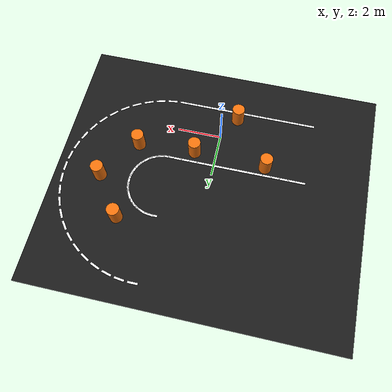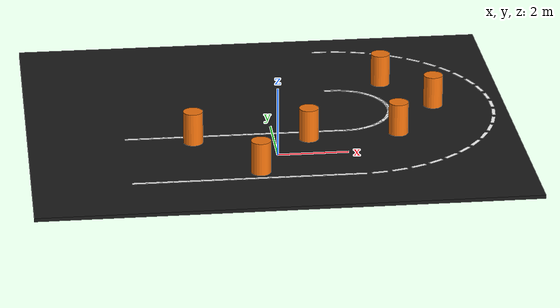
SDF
<sdf version="1.9">
 <world name="test_world_candy_cane_small">
  <physics name="1ms" type="ignored">
   <max_step_size>0.001</max_step_size>
   <real_time_factor>1.0</real_time_factor>
  </physics>
  <plugin filename="libgz-sim8-physics-system.so" name="gz::sim::systems::Physics"/>
  <plugin filename="gz-sim-sensors-system" name="gz::sim::systems::Sensors"/>
  <plugin filename="libgz-sim8-scene-broadcaster-system.so" name="gz::sim::systems::SceneBroadcaster"/>
  <include><uri>https://fuel.gazebosim.org/1.0/openrobotics/models/Sun</uri></include>
  <model name="candy_cane_track_small">
   <static>true</static>
   <link name="track_link">
    <collision name="track_collision">
     <pose>0 2.5 -0.05 0 0 0</pose>
     <geometry><box><size>14 12 0.10</size></box></geometry>
     <surface><friction><ode><mu>1.2</mu><mu2>1.2</mu2></ode></friction></surface>
    </collision>
    <visual name="track_visual">
     <pose>0 2.5 -0.05 0 0 0</pose>
     <geometry><box><size>14 12 0.10</size></box></geometry>
     <material>
      <ambient>0.08 0.08 0.08 1</ambient>
      <diffuse>0.10 0.10 0.10 1</diffuse>
      <specular>0.02 0.02 0.02 1</specular>
     </material>
    </visual>
    <visual name="outer_lane_000">
     <pose>-4.0000 1.5240 0.0010 0 0 0.000000</pose>
     <geometry><box><size>0.4500 0.1000 0.0050</size></box></geometry>
     <material><ambient>1 1 1 1</ambient><diffuse>1 1 1 1</diffuse><specular>0.1 0.1 0.1 1</specular></material>
    </visual>
    <visual name="outer_lane_001">
     <pose>-3.6190 1.5240 0.0010 0 0 0.000000</pose>
     <geometry><box><size>0.4500 0.1000 0.0050</size></box></geometry>
     <material><ambient>1 1 1 1</ambient><diffuse>1 1 1 1</diffuse><specular>0.1 0.1 0.1 1</specular></material>
    </visual>
    <visual name="outer_lane_002">
     <pose>-3.2380 1.5240 0.0010 0 0 0.000000</pose>
     <geometry><box><size>0.4500 0.1000 0.0050</size></box></geometry>
     <material><ambient>1 1 1 1</ambient><diffuse>1 1 1 1</diffuse><specular>0.1 0.1 0.1 1</specular></material>
    </visual>
    <visual name="outer_lane_003">
     <pose>-2.8570 1.5240 0.0010 0 0 0.000000</pose>
     <geometry><box><size>0.4500 0.1000 0.0050</size></box></geometry>
     <material><ambient>1 1 1 1</ambient><diffuse>1 1 1 1</diffuse><specular>0.1 0.1 0.1 1</specular></material>
    </visual>
    <visual name="outer_lane_004">
     <pose>-2.4760 1.5240 0.0010 0 0 0.000000</pose>
     <geometry><box><size>0.4500 0.1000 0.0050</size></box></geometry>
     <material><ambient>1 1 1 1</ambient><diffuse>1 1 1 1</diffuse><specular>0.1 0.1 0.1 1</specular></material>
    </visual>
    <visual name="outer_lane_005">
     <pose>-2.0950 1.5240 0.0010 0 0 0.000000</pose>
     <geometry><box><size>0.4500 0.1000 0.0050</size></box></geometry>
     <material><ambient>1 1 1 1</ambient><diffuse>1 1 1 1</diffuse><specular>0.1 0.1 0.1 1</specular></material>
    </visual>
    <visual name="outer_lane_006">
     <pose>-1.7140 1.5240 0.0010 0 0 0.000000</pose>
     <geometry><box><size>0.4500 0.1000 0.0050</size></box></geometry>
     <material><ambient>1 1 1 1</ambient><diffuse>1 1 1 1</diffuse><specular>0.1 0.1 0.1 1</specular></material>
    </visual>
    <visual name="outer_lane_007">
     <pose>-1.3330 1.5240 0.0010 0 0 0.000000</pose>
     <geometry><box><size>0.4500 0.1000 0.0050</size></box></geometry>
     <material><ambient>1 1 1 1</ambient><diffuse>1 1 1 1</diffuse><specular>0.1 0.1 0.1 1</specular></material>
    </visual>
    <visual name="outer_lane_008">
     <pose>-0.9520 1.5240 0.0010 0 0 0.000000</pose>
     <geometry><box><size>0.4500 0.1000 0.0050</size></box></geometry>
     <material><ambient>1 1 1 1</ambient><diffuse>1 1 1 1</diffuse><specular>0.1 0.1 0.1 1</specular></material>
    </visual>
    <visual name="outer_lane_009">
     <pose>-0.5710 1.5240 0.0010 0 0 0.000000</pose>
     <geometry><box><size>0.4500 0.1000 0.0050</size></box></geometry>
     <material><ambient>1 1 1 1</ambient><diffuse>1 1 1 1</diffuse><specular>0.1 0.1 0.1 1</specular></material>
    </visual>
    <visual name="outer_lane_010">
     <pose>-0.1900 1.5240 0.0010 0 0 0.000000</pose>
     <geometry><box><size>0.4500 0.1000 0.0050</size></box></geometry>
     <material><ambient>1 1 1 1</ambient><diffuse>1 1 1 1</diffuse><specular>0.1 0.1 0.1 1</specular></material>
    </visual>
    <visual name="outer_lane_011">
     <pose>0.1910 1.5240 0.0010 0 0 0.000000</pose>
     <geometry><box><size>0.4500 0.1000 0.0050</size></box></geometry>
     <material><ambient>1 1 1 1</ambient><diffuse>1 1 1 1</diffuse><specular>0.1 0.1 0.1 1</specular></material>
    </visual>
    <visual name="outer_lane_012">
     <pose>0.5720 1.5240 0.0010 0 0 0.000000</pose>
     <geometry><box><size>0.4500 0.1000 0.0050</size></box></geometry>
     <material><ambient>1 1 1 1</ambient><diffuse>1 1 1 1</diffuse><specular>0.1 0.1 0.1 1</specular></material>
    </visual>
    <visual name="outer_lane_013">
     <pose>0.9530 1.5240 0.0010 0 0 0.000000</pose>
     <geometry><box><size>0.4500 0.1000 0.0050</size></box></geometry>
     <material><ambient>1 1 1 1</ambient><diffuse>1 1 1 1</diffuse><specular>0.1 0.1 0.1 1</specular></material>
    </visual>
    <visual name="outer_lane_014">
     <pose>1.3340 1.5240 0.0010 0 0 0.000000</pose>
     <geometry><box><size>0.4500 0.1000 0.0050</size></box></geometry>
     <material><ambient>1 1 1 1</ambient><diffuse>1 1 1 1</diffuse><specular>0.1 0.1 0.1 1</specular></material>
    </visual>
    <visual name="outer_lane_015">
     <pose>1.7150 1.5240 0.0010 0 0 0.000000</pose>
     <geometry><box><size>0.4500 0.1000 0.0050</size></box></geometry>
     <material><ambient>1 1 1 1</ambient><diffuse>1 1 1 1</diffuse><specular>0.1 0.1 0.1 1</specular></material>
    </visual>
    <visual name="outer_lane_016">
     <pose>2.0960 1.5240 0.0010 0 0 0.000000</pose>
     <geometry><box><size>0.4500 0.1000 0.0050</size></box></geometry>
     <material><ambient>1 1 1 1</ambient><diffuse>1 1 1 1</diffuse><specular>0.1 0.1 0.1 1</specular></material>
    </visual>
    <visual name="outer_lane_017">
     <pose>2.2887 1.5366 0.0010 0 0 0.130900</pose>
     <geometry><box><size>0.4500 0.1000 0.0050</size></box></geometry>
     <material><ambient>1 1 1 1</ambient><diffuse>1 1 1 1</diffuse><specular>0.1 0.1 0.1 1</specular></material>
    </visual>
    <visual name="outer_lane_018">
     <pose>2.4780 1.5743 0.0010 0 0 0.261799</pose>
     <geometry><box><size>0.4500 0.1000 0.0050</size></box></geometry>
     <material><ambient>1 1 1 1</ambient><diffuse>1 1 1 1</diffuse><specular>0.1 0.1 0.1 1</specular></material>
    </visual>
    <visual name="outer_lane_019">
     <pose>2.6608 1.6364 0.0010 0 0 0.392699</pose>
     <geometry><box><size>0.4500 0.1000 0.0050</size></box></geometry>
     <material><ambient>1 1 1 1</ambient><diffuse>1 1 1 1</diffuse><specular>0.1 0.1 0.1 1</specular></material>
    </visual>
    <visual name="outer_lane_020">
     <pose>2.8340 1.7217 0.0010 0 0 0.523599</pose>
     <geometry><box><size>0.4500 0.1000 0.0050</size></box></geometry>
     <material><ambient>1 1 1 1</ambient><diffuse>1 1 1 1</diffuse><specular>0.1 0.1 0.1 1</specular></material>
    </visual>
    <visual name="outer_lane_021">
     <pose>2.9945 1.8290 0.0010 0 0 0.654498</pose>
     <geometry><box><size>0.4500 0.1000 0.0050</size></box></geometry>
     <material><ambient>1 1 1 1</ambient><diffuse>1 1 1 1</diffuse><specular>0.1 0.1 0.1 1</specular></material>
    </visual>
    <visual name="outer_lane_022">
     <pose>3.1397 1.9563 0.0010 0 0 0.785398</pose>
     <geometry><box><size>0.4500 0.1000 0.0050</size></box></geometry>
     <material><ambient>1 1 1 1</ambient><diffuse>1 1 1 1</diffuse><specular>0.1 0.1 0.1 1</specular></material>
    </visual>
    <visual name="outer_lane_023">
     <pose>3.2670 2.1015 0.0010 0 0 0.916298</pose>
     <geometry><box><size>0.4500 0.1000 0.0050</size></box></geometry>
     <material><ambient>1 1 1 1</ambient><diffuse>1 1 1 1</diffuse><specular>0.1 0.1 0.1 1</specular></material>
    </visual>
    <visual name="outer_lane_024">
     <pose>3.3743 2.2620 0.0010 0 0 1.047198</pose>
     <geometry><box><size>0.4500 0.1000 0.0050</size></box></geometry>
     <material><ambient>1 1 1 1</ambient><diffuse>1 1 1 1</diffuse><specular>0.1 0.1 0.1 1</specular></material>
    </visual>
    <visual name="outer_lane_025">
     <pose>3.4596 2.4352 0.0010 0 0 1.178097</pose>
     <geometry><box><size>0.4500 0.1000 0.0050</size></box></geometry>
     <material><ambient>1 1 1 1</ambient><diffuse>1 1 1 1</diffuse><specular>0.1 0.1 0.1 1</specular></material>
    </visual>
    <visual name="outer_lane_026">
     <pose>3.5217 2.6180 0.0010 0 0 1.308997</pose>
     <geometry><box><size>0.4500 0.1000 0.0050</size></box></geometry>
     <material><ambient>1 1 1 1</ambient><diffuse>1 1 1 1</diffuse><specular>0.1 0.1 0.1 1</specular></material>
    </visual>
    <visual name="outer_lane_027">
     <pose>3.5594 2.8073 0.0010 0 0 1.439897</pose>
     <geometry><box><size>0.4500 0.1000 0.0050</size></box></geometry>
     <material><ambient>1 1 1 1</ambient><diffuse>1 1 1 1</diffuse><specular>0.1 0.1 0.1 1</specular></material>
    </visual>
    <visual name="outer_lane_028">
     <pose>3.5720 3.0000 0.0010 0 0 1.570796</pose>
     <geometry><box><size>0.4500 0.1000 0.0050</size></box></geometry>
     <material><ambient>1 1 1 1</ambient><diffuse>1 1 1 1</diffuse><specular>0.1 0.1 0.1 1</specular></material>
    </visual>
    <visual name="outer_lane_029">
     <pose>3.5594 3.1927 0.0010 0 0 1.701696</pose>
     <geometry><box><size>0.4500 0.1000 0.0050</size></box></geometry>
     <material><ambient>1 1 1 1</ambient><diffuse>1 1 1 1</diffuse><specular>0.1 0.1 0.1 1</specular></material>
    </visual>
    <visual name="outer_lane_030">
     <pose>3.5217 3.3820 0.0010 0 0 1.832596</pose>
     <geometry><box><size>0.4500 0.1000 0.0050</size></box></geometry>
     <material><ambient>1 1 1 1</ambient><diffuse>1 1 1 1</diffuse><specular>0.1 0.1 0.1 1</specular></material>
    </visual>
    <visual name="outer_lane_031">
     <pose>3.4596 3.5648 0.0010 0 0 1.963495</pose>
     <geometry><box><size>0.4500 0.1000 0.0050</size></box></geometry>
     <material><ambient>1 1 1 1</ambient><diffuse>1 1 1 1</diffuse><specular>0.1 0.1 0.1 1</specular></material>
    </visual>
    <visual name="outer_lane_032">
     <pose>3.3743 3.7380 0.0010 0 0 2.094395</pose>
     <geometry><box><size>0.4500 0.1000 0.0050</size></box></geometry>
     <material><ambient>1 1 1 1</ambient><diffuse>1 1 1 1</diffuse><specular>0.1 0.1 0.1 1</specular></material>
    </visual>
    <visual name="outer_lane_033">
     <pose>3.2670 3.8985 0.0010 0 0 2.225295</pose>
     <geometry><box><size>0.4500 0.1000 0.0050</size></box></geometry>
     <material><ambient>1 1 1 1</ambient><diffuse>1 1 1 1</diffuse><specular>0.1 0.1 0.1 1</specular></material>
    </visual>
    <visual name="outer_lane_034">
     <pose>3.1397 4.0437 0.0010 0 0 2.356194</pose>
     <geometry><box><size>0.4500 0.1000 0.0050</size></box></geometry>
     <material><ambient>1 1 1 1</ambient><diffuse>1 1 1 1</diffuse><specular>0.1 0.1 0.1 1</specular></material>
    </visual>
    <visual name="outer_lane_035">
     <pose>2.9945 4.1710 0.0010 0 0 2.487094</pose>
     <geometry><box><size>0.4500 0.1000 0.0050</size></box></geometry>
     <material><ambient>1 1 1 1</ambient><diffuse>1 1 1 1</diffuse><specular>0.1 0.1 0.1 1</specular></material>
    </visual>
    <visual name="outer_lane_036">
     <pose>2.8340 4.2783 0.0010 0 0 2.617994</pose>
     <geometry><box><size>0.4500 0.1000 0.0050</size></box></geometry>
     <material><ambient>1 1 1 1</ambient><diffuse>1 1 1 1</diffuse><specular>0.1 0.1 0.1 1</specular></material>
    </visual>
    <visual name="outer_lane_037">
     <pose>2.6608 4.3636 0.0010 0 0 2.748894</pose>
     <geometry><box><size>0.4500 0.1000 0.0050</size></box></geometry>
     <material><ambient>1 1 1 1</ambient><diffuse>1 1 1 1</diffuse><specular>0.1 0.1 0.1 1</specular></material>
    </visual>
    <visual name="outer_lane_038">
     <pose>2.4780 4.4257 0.0010 0 0 2.879793</pose>
     <geometry><box><size>0.4500 0.1000 0.0050</size></box></geometry>
     <material><ambient>1 1 1 1</ambient><diffuse>1 1 1 1</diffuse><specular>0.1 0.1 0.1 1</specular></material>
    </visual>
    <visual name="outer_lane_039">
     <pose>2.2887 4.4634 0.0010 0 0 3.010693</pose>
     <geometry><box><size>0.4500 0.1000 0.0050</size></box></geometry>
     <material><ambient>1 1 1 1</ambient><diffuse>1 1 1 1</diffuse><specular>0.1 0.1 0.1 1</specular></material>
    </visual>
    <visual name="outer_lane_040">
     <pose>2.0960 4.4760 0.0010 0 0 3.141593</pose>
     <geometry><box><size>0.4500 0.1000 0.0050</size></box></geometry>
     <material><ambient>1 1 1 1</ambient><diffuse>1 1 1 1</diffuse><specular>0.1 0.1 0.1 1</specular></material>
    </visual>
    <visual name="inner_lane_000">
     <pose>-4.0000 -1.5240 0.0010 0 0 0.000000</pose>
     <geometry><box><size>0.4500 0.1000 0.0050</size></box></geometry>
     <material><ambient>1 1 1 1</ambient><diffuse>1 1 1 1</diffuse><specular>0.1 0.1 0.1 1</specular></material>
    </visual>
    <visual name="inner_lane_001">
     <pose>-3.6190 -1.5240 0.0010 0 0 0.000000</pose>
     <geometry><box><size>0.4500 0.1000 0.0050</size></box></geometry>
     <material><ambient>1 1 1 1</ambient><diffuse>1 1 1 1</diffuse><specular>0.1 0.1 0.1 1</specular></material>
    </visual>
    <visual name="inner_lane_002">
     <pose>-3.2380 -1.5240 0.0010 0 0 0.000000</pose>
     <geometry><box><size>0.4500 0.1000 0.0050</size></box></geometry>
     <material><ambient>1 1 1 1</ambient><diffuse>1 1 1 1</diffuse><specular>0.1 0.1 0.1 1</specular></material>
    </visual>
    <visual name="inner_lane_003">
     <pose>-2.8570 -1.5240 0.0010 0 0 0.000000</pose>
     <geometry><box><size>0.4500 0.1000 0.0050</size></box></geometry>
     <material><ambient>1 1 1 1</ambient><diffuse>1 1 1 1</diffuse><specular>0.1 0.1 0.1 1</specular></material>
    </visual>
    <visual name="inner_lane_004">
     <pose>-2.4760 -1.5240 0.0010 0 0 0.000000</pose>
     <geometry><box><size>0.4500 0.1000 0.0050</size></box></geometry>
     <material><ambient>1 1 1 1</ambient><diffuse>1 1 1 1</diffuse><specular>0.1 0.1 0.1 1</specular></material>
    </visual>
    <visual name="inner_lane_005">
     <pose>-2.0950 -1.5240 0.0010 0 0 0.000000</pose>
     <geometry><box><size>0.4500 0.1000 0.0050</size></box></geometry>
     <material><ambient>1 1 1 1</ambient><diffuse>1 1 1 1</diffuse><specular>0.1 0.1 0.1 1</specular></material>
    </visual>
    <visual name="inner_lane_006">
     <pose>-1.7140 -1.5240 0.0010 0 0 0.000000</pose>
     <geometry><box><size>0.4500 0.1000 0.0050</size></box></geometry>
     <material><ambient>1 1 1 1</ambient><diffuse>1 1 1 1</diffuse><specular>0.1 0.1 0.1 1</specular></material>
    </visual>
    <visual name="inner_lane_007">
     <pose>-1.3330 -1.5240 0.0010 0 0 0.000000</pose>
     <geometry><box><size>0.4500 0.1000 0.0050</size></box></geometry>
     <material><ambient>1 1 1 1</ambient><diffuse>1 1 1 1</diffuse><specular>0.1 0.1 0.1 1</specular></material>
    </visual>
    <visual name="inner_lane_008">
     <pose>-0.9520 -1.5240 0.0010 0 0 0.000000</pose>
     <geometry><box><size>0.4500 0.1000 0.0050</size></box></geometry>
     <material><ambient>1 1 1 1</ambient><diffuse>1 1 1 1</diffuse><specular>0.1 0.1 0.1 1</specular></material>
    </visual>
    <visual name="inner_lane_009">
     <pose>-0.5710 -1.5240 0.0010 0 0 0.000000</pose>
     <geometry><box><size>0.4500 0.1000 0.0050</size></box></geometry>
     <material><ambient>1 1 1 1</ambient><diffuse>1 1 1 1</diffuse><specular>0.1 0.1 0.1 1</specular></material>
    </visual>
    <visual name="inner_lane_010">
     <pose>-0.1900 -1.5240 0.0010 0 0 0.000000</pose>
     <geometry><box><size>0.4500 0.1000 0.0050</size></box></geometry>
     <material><ambient>1 1 1 1</ambient><diffuse>1 1 1 1</diffuse><specular>0.1 0.1 0.1 1</specular></material>
    </visual>
    <visual name="inner_lane_011">
     <pose>0.1910 -1.5240 0.0010 0 0 0.000000</pose>
     <geometry><box><size>0.4500 0.1000 0.0050</size></box></geometry>
     <material><ambient>1 1 1 1</ambient><diffuse>1 1 1 1</diffuse><specular>0.1 0.1 0.1 1</specular></material>
    </visual>
    <visual name="inner_lane_012">
     <pose>0.5720 -1.5240 0.0010 0 0 0.000000</pose>
     <geometry><box><size>0.4500 0.1000 0.0050</size></box></geometry>
     <material><ambient>1 1 1 1</ambient><diffuse>1 1 1 1</diffuse><specular>0.1 0.1 0.1 1</specular></material>
    </visual>
    <visual name="inner_lane_013">
     <pose>0.9530 -1.5240 0.0010 0 0 0.000000</pose>
     <geometry><box><size>0.4500 0.1000 0.0050</size></box></geometry>
     <material><ambient>1 1 1 1</ambient><diffuse>1 1 1 1</diffuse><specular>0.1 0.1 0.1 1</specular></material>
    </visual>
    <visual name="inner_lane_014">
     <pose>1.3340 -1.5240 0.0010 0 0 0.000000</pose>
     <geometry><box><size>0.4500 0.1000 0.0050</size></box></geometry>
     <material><ambient>1 1 1 1</ambient><diffuse>1 1 1 1</diffuse><specular>0.1 0.1 0.1 1</specular></material>
    </visual>
    <visual name="inner_lane_015">
     <pose>1.7150 -1.5240 0.0010 0 0 0.000000</pose>
     <geometry><box><size>0.4500 0.1000 0.0050</size></box></geometry>
     <material><ambient>1 1 1 1</ambient><diffuse>1 1 1 1</diffuse><specular>0.1 0.1 0.1 1</specular></material>
    </visual>
    <visual name="inner_lane_016">
     <pose>2.0960 -1.5240 0.0010 0 0 0.000000</pose>
     <geometry><box><size>0.4500 0.1000 0.0050</size></box></geometry>
     <material><ambient>1 1 1 1</ambient><diffuse>1 1 1 1</diffuse><specular>0.1 0.1 0.1 1</specular></material>
    </visual>
    <visual name="inner_lane_017">
     <pose>2.6865 -1.4853 0.0010 0 0 0.130900</pose>
     <geometry><box><size>0.4500 0.1000 0.0050</size></box></geometry>
     <material><ambient>1 1 1 1</ambient><diffuse>1 1 1 1</diffuse><specular>0.1 0.1 0.1 1</specular></material>
    </visual>
    <visual name="inner_lane_018">
     <pose>3.2669 -1.3698 0.0010 0 0 0.261799</pose>
     <geometry><box><size>0.4500 0.1000 0.0050</size></box></geometry>
     <material><ambient>1 1 1 1</ambient><diffuse>1 1 1 1</diffuse><specular>0.1 0.1 0.1 1</specular></material>
    </visual>
    <visual name="inner_lane_019">
     <pose>3.8273 -1.1796 0.0010 0 0 0.392699</pose>
     <geometry><box><size>0.4500 0.1000 0.0050</size></box></geometry>
     <material><ambient>1 1 1 1</ambient><diffuse>1 1 1 1</diffuse><specular>0.1 0.1 0.1 1</specular></material>
    </visual>
    <visual name="inner_lane_020">
     <pose>4.3580 -0.9179 0.0010 0 0 0.523599</pose>
     <geometry><box><size>0.4500 0.1000 0.0050</size></box></geometry>
     <material><ambient>1 1 1 1</ambient><diffuse>1 1 1 1</diffuse><specular>0.1 0.1 0.1 1</specular></material>
    </visual>
    <visual name="inner_lane_021">
     <pose>4.8500 -0.5891 0.0010 0 0 0.654498</pose>
     <geometry><box><size>0.4500 0.1000 0.0050</size></box></geometry>
     <material><ambient>1 1 1 1</ambient><diffuse>1 1 1 1</diffuse><specular>0.1 0.1 0.1 1</specular></material>
    </visual>
    <visual name="inner_lane_022">
     <pose>5.2950 -0.1990 0.0010 0 0 0.785398</pose>
     <geometry><box><size>0.4500 0.1000 0.0050</size></box></geometry>
     <material><ambient>1 1 1 1</ambient><diffuse>1 1 1 1</diffuse><specular>0.1 0.1 0.1 1</specular></material>
    </visual>
    <visual name="inner_lane_023">
     <pose>5.6851 0.2460 0.0010 0 0 0.916298</pose>
     <geometry><box><size>0.4500 0.1000 0.0050</size></box></geometry>
     <material><ambient>1 1 1 1</ambient><diffuse>1 1 1 1</diffuse><specular>0.1 0.1 0.1 1</specular></material>
    </visual>
    <visual name="inner_lane_024">
     <pose>6.0139 0.7380 0.0010 0 0 1.047198</pose>
     <geometry><box><size>0.4500 0.1000 0.0050</size></box></geometry>
     <material><ambient>1 1 1 1</ambient><diffuse>1 1 1 1</diffuse><specular>0.1 0.1 0.1 1</specular></material>
    </visual>
    <visual name="inner_lane_025">
     <pose>6.2756 1.2687 0.0010 0 0 1.178097</pose>
     <geometry><box><size>0.4500 0.1000 0.0050</size></box></geometry>
     <material><ambient>1 1 1 1</ambient><diffuse>1 1 1 1</diffuse><specular>0.1 0.1 0.1 1</specular></material>
    </visual>
    <visual name="inner_lane_026">
     <pose>6.4658 1.8291 0.0010 0 0 1.308997</pose>
     <geometry><box><size>0.4500 0.1000 0.0050</size></box></geometry>
     <material><ambient>1 1 1 1</ambient><diffuse>1 1 1 1</diffuse><specular>0.1 0.1 0.1 1</specular></material>
    </visual>
    <visual name="inner_lane_027">
     <pose>6.5813 2.4095 0.0010 0 0 1.439897</pose>
     <geometry><box><size>0.4500 0.1000 0.0050</size></box></geometry>
     <material><ambient>1 1 1 1</ambient><diffuse>1 1 1 1</diffuse><specular>0.1 0.1 0.1 1</specular></material>
    </visual>
    <visual name="inner_lane_028">
     <pose>6.6200 3.0000 0.0010 0 0 1.570796</pose>
     <geometry><box><size>0.4500 0.1000 0.0050</size></box></geometry>
     <material><ambient>1 1 1 1</ambient><diffuse>1 1 1 1</diffuse><specular>0.1 0.1 0.1 1</specular></material>
    </visual>
    <visual name="inner_lane_029">
     <pose>6.5813 3.5905 0.0010 0 0 1.701696</pose>
     <geometry><box><size>0.4500 0.1000 0.0050</size></box></geometry>
     <material><ambient>1 1 1 1</ambient><diffuse>1 1 1 1</diffuse><specular>0.1 0.1 0.1 1</specular></material>
    </visual>
    <visual name="inner_lane_030">
     <pose>6.4658 4.1709 0.0010 0 0 1.832596</pose>
     <geometry><box><size>0.4500 0.1000 0.0050</size></box></geometry>
     <material><ambient>1 1 1 1</ambient><diffuse>1 1 1 1</diffuse><specular>0.1 0.1 0.1 1</specular></material>
    </visual>
    <visual name="inner_lane_031">
     <pose>6.2756 4.7313 0.0010 0 0 1.963495</pose>
     <geometry><box><size>0.4500 0.1000 0.0050</size></box></geometry>
     <material><ambient>1 1 1 1</ambient><diffuse>1 1 1 1</diffuse><specular>0.1 0.1 0.1 1</specular></material>
    </visual>
    <visual name="inner_lane_032">
     <pose>6.0139 5.2620 0.0010 0 0 2.094395</pose>
     <geometry><box><size>0.4500 0.1000 0.0050</size></box></geometry>
     <material><ambient>1 1 1 1</ambient><diffuse>1 1 1 1</diffuse><specular>0.1 0.1 0.1 1</specular></material>
    </visual>
    <visual name="inner_lane_033">
     <pose>5.6851 5.7540 0.0010 0 0 2.225295</pose>
     <geometry><box><size>0.4500 0.1000 0.0050</size></box></geometry>
     <material><ambient>1 1 1 1</ambient><diffuse>1 1 1 1</diffuse><specular>0.1 0.1 0.1 1</specular></material>
    </visual>
    <visual name="inner_lane_034">
     <pose>5.2950 6.1990 0.0010 0 0 2.356194</pose>
     <geometry><box><size>0.4500 0.1000 0.0050</size></box></geometry>
     <material><ambient>1 1 1 1</ambient><diffuse>1 1 1 1</diffuse><specular>0.1 0.1 0.1 1</specular></material>
    </visual>
    <visual name="inner_lane_035">
     <pose>4.8500 6.5891 0.0010 0 0 2.487094</pose>
     <geometry><box><size>0.4500 0.1000 0.0050</size></box></geometry>
     <material><ambient>1 1 1 1</ambient><diffuse>1 1 1 1</diffuse><specular>0.1 0.1 0.1 1</specular></material>
    </visual>
    <visual name="inner_lane_036">
     <pose>4.3580 6.9179 0.0010 0 0 2.617994</pose>
     <geometry><box><size>0.4500 0.1000 0.0050</size></box></geometry>
     <material><ambient>1 1 1 1</ambient><diffuse>1 1 1 1</diffuse><specular>0.1 0.1 0.1 1</specular></material>
    </visual>
    <visual name="inner_lane_037">
     <pose>3.8273 7.1796 0.0010 0 0 2.748894</pose>
     <geometry><box><size>0.4500 0.1000 0.0050</size></box></geometry>
     <material><ambient>1 1 1 1</ambient><diffuse>1 1 1 1</diffuse><specular>0.1 0.1 0.1 1</specular></material>
    </visual>
    <visual name="inner_lane_038">
     <pose>3.2669 7.3698 0.0010 0 0 2.879793</pose>
     <geometry><box><size>0.4500 0.1000 0.0050</size></box></geometry>
     <material><ambient>1 1 1 1</ambient><diffuse>1 1 1 1</diffuse><specular>0.1 0.1 0.1 1</specular></material>
    </visual>
    <visual name="inner_lane_039">
     <pose>2.6865 7.4853 0.0010 0 0 3.010693</pose>
     <geometry><box><size>0.4500 0.1000 0.0050</size></box></geometry>
     <material><ambient>1 1 1 1</ambient><diffuse>1 1 1 1</diffuse><specular>0.1 0.1 0.1 1</specular></material>
    </visual>
    <visual name="inner_lane_040">
     <pose>2.0960 7.5240 0.0010 0 0 3.141593</pose>
     <geometry><box><size>0.4500 0.1000 0.0050</size></box></geometry>
     <material><ambient>1 1 1 1</ambient><diffuse>1 1 1 1</diffuse><specular>0.1 0.1 0.1 1</specular></material>
    </visual>
   </link>
  </model>
  <model name="barrel_0">
   <static>true</static>
   <pose>-2.300 1.150 0.475 0 0 0</pose>
   <link name="link">
    <collision name="collision">
     <geometry><cylinder><radius>0.280</radius><length>0.950</length></cylinder></geometry>
     <surface><friction><ode><mu>1.0</mu><mu2>1.0</mu2></ode></friction></surface>
    </collision>
    <visual name="visual">
     <geometry><cylinder><radius>0.280</radius><length>0.950</length></cylinder></geometry>
     <material>
      <ambient>0.95 0.45 0.05 1</ambient>
      <diffuse>0.95 0.45 0.05 1</diffuse>
      <specular>0.1 0.1 0.1 1</specular>
     </material>
    </visual>
   </link>
  </model>
  <model name="barrel_1">
   <static>true</static>
   <pose>-0.600 -1.100 0.475 0 0 0</pose>
   <link name="link">
    <collision name="collision">
     <geometry><cylinder><radius>0.280</radius><length>0.950</length></cylinder></geometry>
     <surface><friction><ode><mu>1.0</mu><mu2>1.0</mu2></ode></friction></surface>
    </collision>
    <visual name="visual">
     <geometry><cylinder><radius>0.280</radius><length>0.950</length></cylinder></geometry>
     <material>
      <ambient>0.95 0.45 0.05 1</ambient>
      <diffuse>0.95 0.45 0.05 1</diffuse>
      <specular>0.1 0.1 0.1 1</specular>
     </material>
    </visual>
   </link>
  </model>
  <model name="barrel_2">
   <static>true</static>
   <pose>1.000 1.050 0.475 0 0 0</pose>
   <link name="link">
    <collision name="collision">
     <geometry><cylinder><radius>0.280</radius><length>0.950</length></cylinder></geometry>
     <surface><friction><ode><mu>1.0</mu><mu2>1.0</mu2></ode></friction></surface>
    </collision>
    <visual name="visual">
     <geometry><cylinder><radius>0.280</radius><length>0.950</length></cylinder></geometry>
     <material>
      <ambient>0.95 0.45 0.05 1</ambient>
      <diffuse>0.95 0.45 0.05 1</diffuse>
      <specular>0.1 0.1 0.1 1</specular>
     </material>
    </visual>
   </link>
  </model>
  <model name="barrel_3">
   <static>true</static>
   <pose>3.600 1.200 0.475 0 0 0</pose>
   <link name="link">
    <collision name="collision">
     <geometry><cylinder><radius>0.280</radius><length>0.950</length></cylinder></geometry>
     <surface><friction><ode><mu>1.0</mu><mu2>1.0</mu2></ode></friction></surface>
    </collision>
    <visual name="visual">
     <geometry><cylinder><radius>0.280</radius><length>0.950</length></cylinder></geometry>
     <material>
      <ambient>0.95 0.45 0.05 1</ambient>
      <diffuse>0.95 0.45 0.05 1</diffuse>
      <specular>0.1 0.1 0.1 1</specular>
     </material>
    </visual>
   </link>
  </model>
  <model name="barrel_4">
   <static>true</static>
   <pose>4.900 3.100 0.475 0 0 0</pose>
   <link name="link">
    <collision name="collision">
     <geometry><cylinder><radius>0.280</radius><length>0.950</length></cylinder></geometry>
     <surface><friction><ode><mu>1.0</mu><mu2>1.0</mu2></ode></friction></surface>
    </collision>
    <visual name="visual">
     <geometry><cylinder><radius>0.280</radius><length>0.950</length></cylinder></geometry>
     <material>
      <ambient>0.95 0.45 0.05 1</ambient>
      <diffuse>0.95 0.45 0.05 1</diffuse>
      <specular>0.1 0.1 0.1 1</specular>
     </material>
    </visual>
   </link>
  </model>
  <model name="barrel_5">
   <static>true</static>
   <pose>3.600 4.900 0.475 0 0 0</pose>
   <link name="link">
    <collision name="collision">
     <geometry><cylinder><radius>0.280</radius><length>0.950</length></cylinder></geometry>
     <surface><friction><ode><mu>1.0</mu><mu2>1.0</mu2></ode></friction></surface>
    </collision>
    <visual name="visual">
     <geometry><cylinder><radius>0.280</radius><length>0.950</length></cylinder></geometry>
     <material>
      <ambient>0.95 0.45 0.05 1</ambient>
      <diffuse>0.95 0.45 0.05 1</diffuse>
      <specular>0.1 0.1 0.1 1</specular>
     </material>
    </visual>
   </link>
  </model>
 </world>
</sdf>
